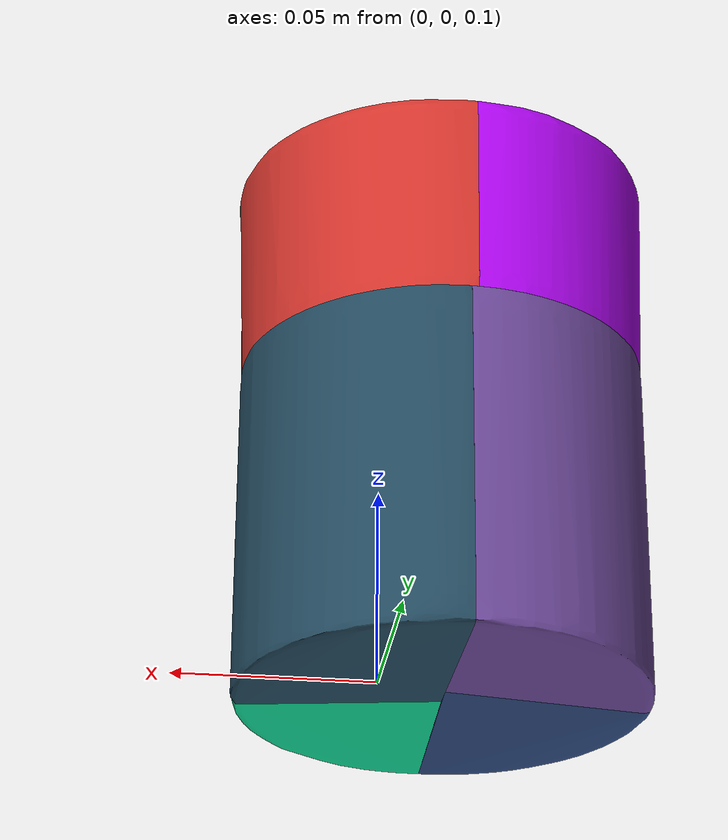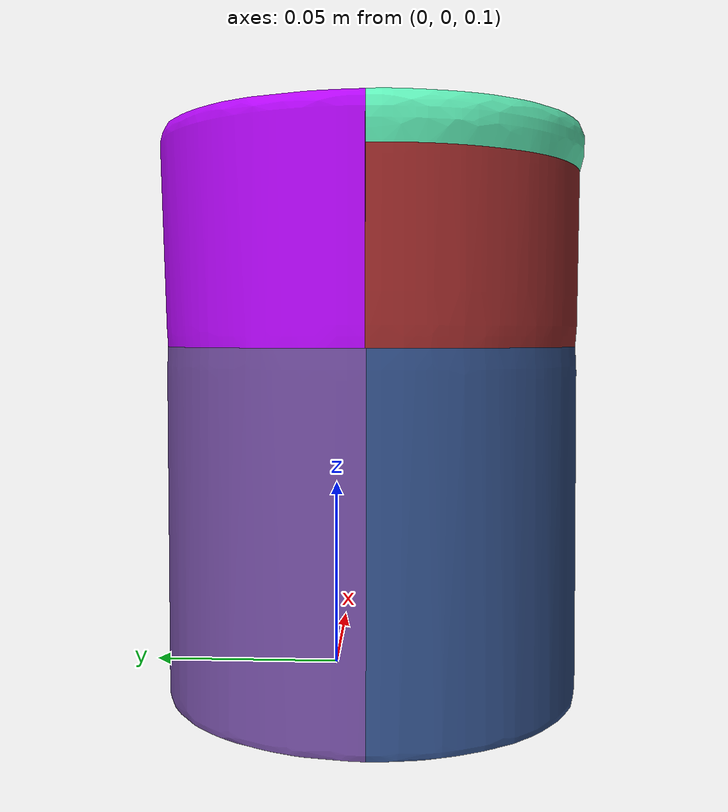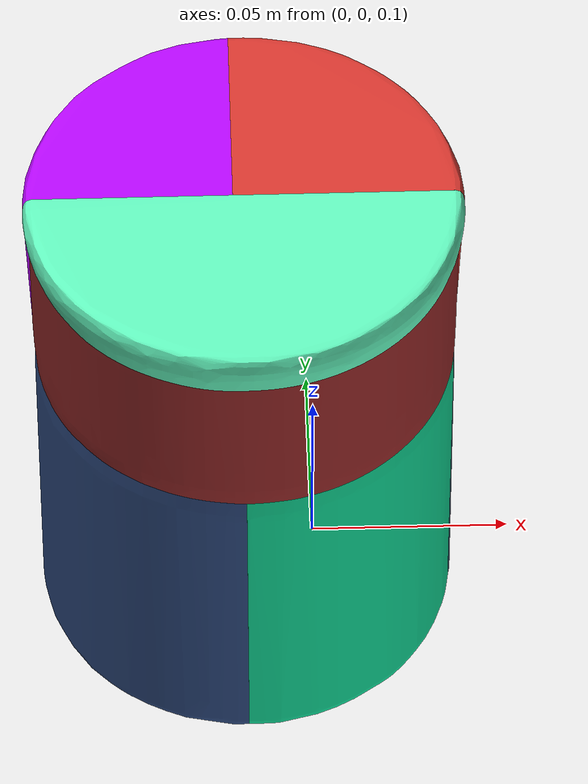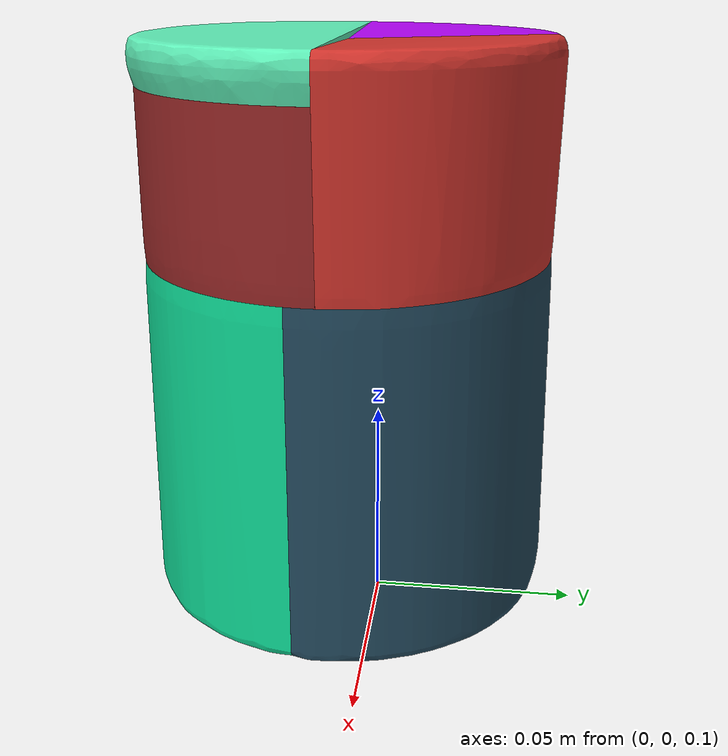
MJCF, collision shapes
<mujoco model="002_master_chef_can">
  <compiler assetdir="meshes" texturedir="materials"/>

  <asset>
    <texture type="2d" name="texture" file="002_master_chef_can_texture_map.png"/>
    <material name="texture" texture="texture"/>

    <mesh file="002_master_chef_can_textured.obj"/>
    <mesh file="002_master_chef_can_coacd_part_000.obj"/>
    <mesh file="002_master_chef_can_coacd_part_001.obj"/>
    <mesh file="002_master_chef_can_coacd_part_002.obj"/>
    <mesh file="002_master_chef_can_coacd_part_003.obj"/>
    <mesh file="002_master_chef_can_coacd_part_004.obj"/>
    <mesh file="002_master_chef_can_coacd_part_005.obj"/>
    <mesh file="002_master_chef_can_coacd_part_006.obj"/>
    <mesh file="002_master_chef_can_coacd_part_007.obj"/>
  </asset>

  <default>
    <default class="002_master_chef_can">
      <default class="visual_002_master_chef_can">
        <geom type="mesh" group="2" density="200" contype="0" conaffinity="0" material="texture"/>
      </default>
      <default class="collision_002_master_chef_can">
        <geom type="mesh" group="3" mass="0" density="0" solref=".004 1" friction="1.0 0.01 0.01" condim="6"/>
      </default>
    </default>
  </default>

  <worldbody>
    <body childclass="002_master_chef_can" pos="0 0 0.1">
      <freejoint/>
      <geom class="visual_002_master_chef_can" mesh="002_master_chef_can_textured"/>
      <geom class="collision_002_master_chef_can" mesh="002_master_chef_can_coacd_part_000" rgba="0.375 0.95 0.73 1"/>
      <geom class="collision_002_master_chef_can" mesh="002_master_chef_can_coacd_part_001" rgba="0.599 0.16 0.16 1"/>
      <geom class="collision_002_master_chef_can" mesh="002_master_chef_can_coacd_part_002" rgba="0.058 0.87 0.60 1"/>
      <geom class="collision_002_master_chef_can" mesh="002_master_chef_can_coacd_part_003" rgba="0.708 0.02 0.97 1"/>
      <geom class="collision_002_master_chef_can" mesh="002_master_chef_can_coacd_part_004" rgba="0.832 0.21 0.18 1"/>
      <geom class="collision_002_master_chef_can" mesh="002_master_chef_can_coacd_part_005" rgba="0.183 0.30 0.52 1"/>
      <geom class="collision_002_master_chef_can" mesh="002_master_chef_can_coacd_part_006" rgba="0.432 0.29 0.61 1"/>
      <geom class="collision_002_master_chef_can" mesh="002_master_chef_can_coacd_part_007" rgba="0.139 0.29 0.37 1"/>
    </body>
  </worldbody>
</mujoco>
